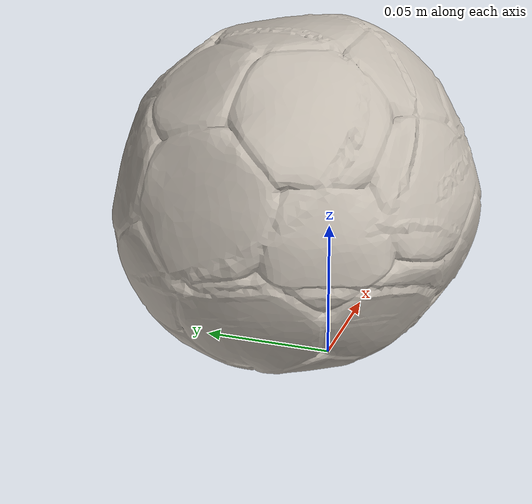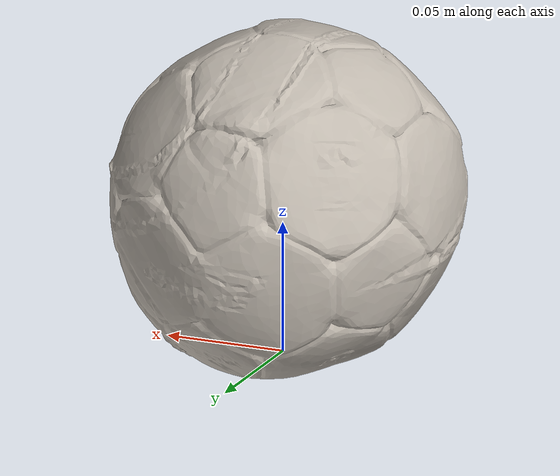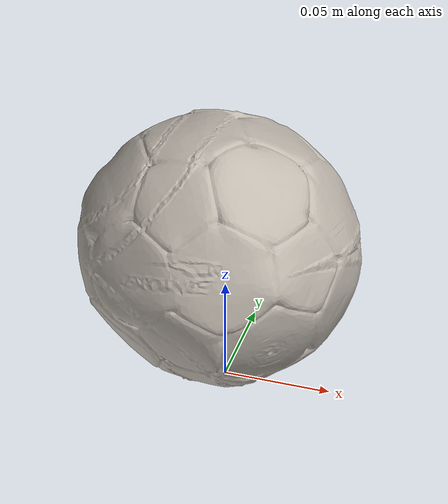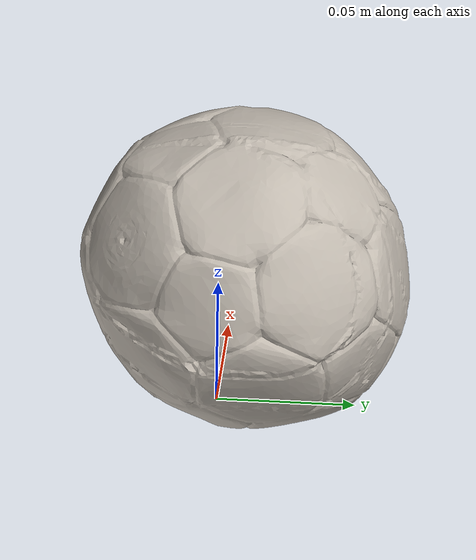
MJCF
<mujoco model="mini_soccer_ball">
  <compiler angle="radian" meshdir="assets" texturedir="assets"/>
    <default>
        <default class="ycb_col">
            <geom contype="1" conaffinity="1" group="3" rgba=".4 .5 .6 1"/>
        </default>
        <default class="ycb_viz">
            <geom contype="0" conaffinity="0" type="mesh" mass="0"/>
        </default>
    </default>
  <asset>
    <texture type="2d" name="mini_soccer_ball_tex" file="texture_map.png"/>
    <material name="mini_soccer_ball_mat" texture="mini_soccer_ball_tex" specular="0.5" shininess="0.5"/>
    <mesh file="textured.obj" name="mini_soccer_ball"/>
    <mesh file="textured_collision_0.obj" name="mini_soccer_ball_collision_0"/>
  </asset>
  <worldbody>
      <geom material="mini_soccer_ball_mat" mesh="mini_soccer_ball" class="ycb_viz"/>
      <geom mesh="mini_soccer_ball_collision_0" class="ycb_col" conaffinity="1" condim="4" friction="0.1 0.1 0.1" mass="0.123" rgba="1 1 1 1" solimp="0.99 0.99 0.01" solref=".001 0.1" type="mesh" group="3"/>
  </worldbody>
</mujoco>
